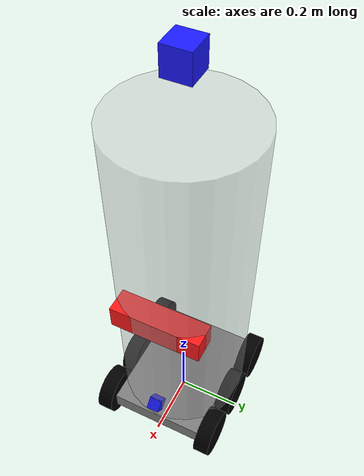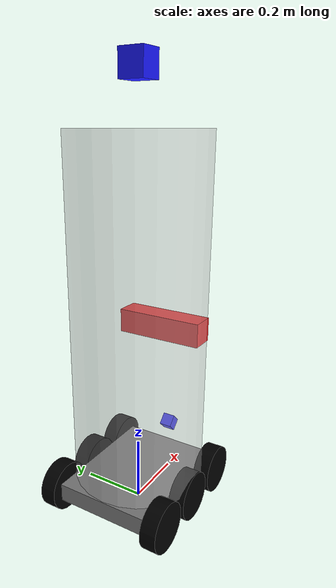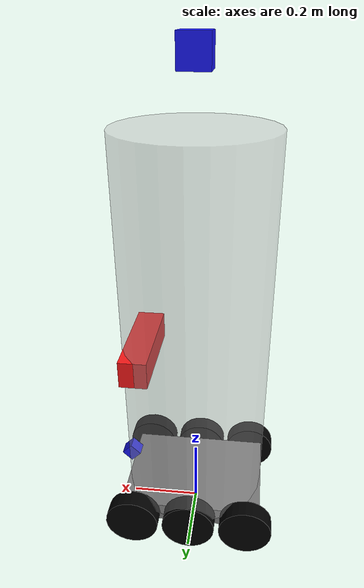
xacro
<?xml version="1.0"?>
<robot name="efim" xmlns:sensor="http://playerstage.sourceforge.net/gazebo/xmlschema/#sensor" xmlns:controller="http://playerstage.sourceforge.net/gazebo/xmlschema/#controller" xmlns:interface="http://playerstage.sourceforge.net/gazebo/xmlschema/#interface" xmlns:xacro="http://ros.org/wiki/xacro">

  <!-- BASE-FOOTPRINT -->
  <!-- base_footprint is a fictitious link(frame) that is on the ground right below base_link origin -->
  <link name="base_footprint">
    <inertial>
      <mass value="0.0001" />
      <origin xyz="0 0 0" />
      <inertia ixx="0.0001" ixy="0.0" ixz="0.0" iyy="0.0001" iyz="0.0" izz="0.0001" />
    </inertial>
    <visual>
      <origin xyz="0 0 0" rpy="0 0 0" />
      <geometry>
        <box size="0.001 0.001 0.001" />
      </geometry>
    </visual>
  </link>

  <joint name="base_footprint_joint" type="fixed">
    <origin xyz="0 0 0.0762" rpy="0 0 0" />
    <parent link="base_footprint" />
    <child link="base_link" />
  </joint>

  <link name="base_link">
    <visual>
      <geometry>
        <box size="0.41148 0.30988 0.05588" />
      </geometry>
      <material name="grey">
        <color rgba="0.5 0.5 0.5 1" />
      </material>
    </visual>
    <collision>
      <geometry>
        <box size="0.41148 0.30988 0.05588" />
      </geometry>
    </collision>
    <inertial>
      <mass value="20.0" />
      <inertia ixx="1.0" iyy="1.0" izz="1.0" ixy="0" ixz="0" iyz="0" />
    </inertial>
  </link>

  <gazebo reference="base_link">
    <material>Gazebo/Black</material>
  </gazebo>

  <link name="body_link">
    <visual>
      <geometry>
        <cylinder length="1.04775" radius="0.2032" />
      </geometry>
      <material name="clear">
        <color rgba="0.75 0.75 0.75 0.4" />
      </material>
    </visual>
    <inertial>
      <mass value="10.0" />
      <inertia ixx="1.0" iyy="1.0" izz="1.0" ixy="0" ixz="0" iyz="0" />
    </inertial>
  </link>

  <joint name="center_joint" type="fixed">
    <axis xyz="0 0 1" />
    <parent link="base_link" />
    <child link="body_link" />
    <origin rpy="0 0 0" xyz="0 0 0.551815" />
  </joint>

  <link name="camera_link">
    <visual>
      <origin rpy="0 0 0" />
      <geometry>
        <box size="0.0762 0.2794 0.0762" />
      </geometry>
      <material name="red">
        <color rgba="1 0.1 0.1 1" />
      </material>
    </visual>
    <inertial>
      <mass value="0.25" />
      <inertia ixx="1.0" iyy="1.0" izz="1.0" ixy="0" ixz="0" iyz="0" />
    </inertial>
  </link>

  <joint name="camera_joint" type="fixed">
    <axis xyz="0 0 0" />
    <parent link="base_link" />
    <child link="camera_link" />
    <origin rpy="0 0 0" xyz="0.15 0 0.48" />
  </joint>

  <joint name="camera_depth_joint" type="fixed">
    <origin xyz="0 0 0" rpy="0 0 0" />
    <parent link="camera_link" />
    <child link="camera_depth_frame" />
  </joint>
  <link name="camera_depth_frame" />

  <joint name="camera_depth_optical_joint" type="fixed">
    <origin xyz="0 0 0" rpy="0 0 0" />
    <parent link="camera_link" />
    <child link="camera_depth_optical_frame" />
  </joint>
  <link name="camera_depth_optical_frame" />

  <link name="laser">
    <visual>
      <geometry>
        <box size="0.0762 0.0762 0.0762" />
      </geometry>
      <material name="blue">
        <color rgba="0.1 0.1 1 1" />
      </material>
    </visual>
    <inertial>
      <mass value="0.25" />
      <inertia ixx="1.0" iyy="1.0" izz="1.0" ixy="0" ixz="0" iyz="0" />
    </inertial>
  </link>

  <joint name="laser_joint" type="fixed">
    <axis xyz="0 0 1" />
    <parent link="base_link" />
    <child link="laser" />
    <origin rpy="0 0 0" xyz="0.0 0 1.23" />
  </joint>

  <link name="wheel_right">
    <visual>
      <geometry>
        <cylinder length="0.0508" radius="0.0762" />
      </geometry>
      <material name="black" />
    </visual>
    <collision>
      <geometry>
        <cylinder length="0.0508" radius="0.0762" />
      </geometry>
    </collision>
    <inertial>
      <mass value="0.1" />
      <inertia ixx="1.0" iyy="1.0" izz="1.0" ixy="0" ixz="0" iyz="0" />
    </inertial>
  </link>

  <joint name="axis_right" type="continuous">
    <axis xyz="0 0 1" />
    <parent link="base_link" />
    <child link="wheel_right" />
    <origin rpy="-1.5708 0 0" xyz="0 -0.18034 0" />
  </joint>

  <link name="wheel_left">
    <visual>
      <geometry>
        <cylinder length="0.0508" radius="0.0762" />
      </geometry>
      <material name="black">
        <color rgba="0 0 0 1" />
      </material>
    </visual>
    <collision>
      <geometry>
        <cylinder length="0.0508" radius="0.0762" />
      </geometry>
    </collision>
    <inertial>
      <mass value="0.1" />
      <inertia ixx="1.0" iyy="1.0" izz="1.0" ixy="0" ixz="0" iyz="0" />
    </inertial>
  </link>

  <joint name="axis_left" type="continuous">
    <axis xyz="0 0 1" />
    <parent link="base_link" />
    <child link="wheel_left" />
    <origin rpy="-1.5708 0 0" xyz="0 0.18034 0" />
  </joint>

  <link name="wheel_front_left">
    <visual>
      <geometry>
        <cylinder length="0.0508" radius="0.0762" />
      </geometry>
      <material name="black">
        <color rgba="0 0 0 1" />
      </material>
    </visual>
    <collision>
      <geometry>
        <cylinder length="0.0508" radius="0.0762" />
      </geometry>
    </collision>
    <inertial>
      <mass value="0.1" />
      <inertia ixx="1.0" iyy="1.0" izz="1.0" ixy="0" ixz="0" iyz="0" />
    </inertial>
  </link>

  <joint name="axis_front_left" type="continuous">
    <axis xyz="0 0 1" />
    <parent link="base_link" />
    <child link="wheel_front_left" />
    <origin rpy="-1.5708 0 0" xyz="0.165862 0.18034 0" />
  </joint>

  <link name="wheel_front_right">
    <visual>
      <geometry>
        <cylinder length="0.0508" radius="0.0762" />
      </geometry>
      <material name="black" />
    </visual>
    <collision>
      <geometry>
        <cylinder length="0.0508" radius="0.0762" />
      </geometry>
    </collision>
    <inertial>
      <mass value="0.1" />
      <inertia ixx="1.0" iyy="1.0" izz="1.0" ixy="0" ixz="0" iyz="0" />
    </inertial>
  </link>

  <joint name="axis_front_right" type="continuous">
    <axis xyz="0 0 1" />
    <parent link="base_link" />
    <child link="wheel_front_right" />
    <origin rpy="-1.5708 0 0" xyz="0.165862 -0.18034 0" />
  </joint>

  <link name="wheel_rear_right">
    <visual>
      <geometry>
        <cylinder length="0.0508" radius="0.0762" />
      </geometry>
      <material name="black" />
    </visual>
    <collision>
      <geometry>
        <cylinder length="0.0508" radius="0.0762" />
      </geometry>
    </collision>
    <inertial>
      <mass value="0.1" />
      <inertia ixx="1.0" iyy="1.0" izz="1.0" ixy="0" ixz="0" iyz="0" />
    </inertial>
  </link>

  <joint name="axis_rear_right" type="continuous">
    <axis xyz="0 0 1" />
    <parent link="base_link" />
    <child link="wheel_rear_right" />
    <origin rpy="-1.5708 0 0" xyz="-0.165862 -0.18034 0" />
  </joint>

  <link name="wheel_rear_left">
    <visual>
      <geometry>
        <cylinder length="0.0508" radius="0.0762" />
      </geometry>
      <material name="black" />
    </visual>
    <collision>
      <geometry>
        <cylinder length="0.0508" radius="0.0762" />
      </geometry>
    </collision>
    <inertial>
      <mass value="0.1" />
      <inertia ixx="1.0" iyy="1.0" izz="1.0" ixy="0" ixz="0" iyz="0" />
    </inertial>
    <gazebo reference="wheel_rear_left">
      <material>Gazebo/Black</material>
    </gazebo>
  </link>

  <joint name="axis_rear_left" type="continuous">
    <axis xyz="0 0 1" />
    <parent link="base_link" />
    <child link="wheel_rear_left" />
    <origin rpy="-1.5708 0 0" xyz="-0.165862 0.18034 0" />
  </joint>

  <link name="front_sonar">
    <visual>
      <geometry>
        <box size="0.04 0.04 0.04" />
      </geometry>
      <material name="red">
        <color rgba="0.1 0.1 1 1" />
      </material>
    </visual>
    <inertial>
      <mass value="0.01" />
      <inertia ixx="1.0" iyy="1.0" izz="1.0" ixy="0" ixz="0" iyz="0" />
    </inertial>
  </link>

  <joint name="front_sonar_joint" type="fixed">
    <axis xyz="0 0 0" />
    <parent link="base_link" />
    <child link="front_sonar" />
    <origin rpy="0 0.785398 0" xyz="0.2 0.0 0.1" />
  </joint>

  <gazebo reference="front_sonar">
    <sensor type="ray" name="TeraRanger">
      <pose>0 0 0 0 0 0</pose>
      <visualize>true</visualize>
      <update_rate>50</update_rate>
      <ray>
        <scan>
          <horizontal>
            <samples>10</samples>
            <resolution>1</resolution>
            <min_angle>-0.14835</min_angle>
            <max_angle>0.14835</max_angle>
          </horizontal>
          <vertical>
            <samples>10</samples>
            <resolution>1</resolution>
            <min_angle>-0.14835</min_angle>
            <max_angle>0.14835</max_angle>
          </vertical>
        </scan>
        <range>
          <min>0.01</min>
          <max>2</max>
          <resolution>0.02</resolution>
        </range>
      </ray>
      <plugin filename="libgazebo_ros_range.so" name="gazebo_ros_range">
        <gaussianNoise>0.005</gaussianNoise>
        <alwaysOn>true</alwaysOn>
        <updateRate>50</updateRate>
        <topicName>sonar</topicName>
        <frameName>front_sonar</frameName>
        <radiation>ULTRASOUND</radiation>
        <fov>0.261799</fov>
      </plugin>
    </sensor>
  </gazebo>

  <gazebo>
    <plugin name="skid_steer_drive_controller" filename="libgazebo_ros_skid_steer_drive.so">
      <updateRate>100.0</updateRate>
      <robotNamespace></robotNamespace>
      <leftFrontJoint>axis_front_left</leftFrontJoint>
      <rightFrontJoint>axis_front_right</rightFrontJoint>
      <leftRearJoint>axis_rear_left</leftRearJoint>
      <rightRearJoint>axis_rear_right</rightRearJoint>
      <wheelSeparation>0.254</wheelSeparation>
      <wheelDiameter>0.1524</wheelDiameter>
      <robotBaseFrame>base_footprint</robotBaseFrame>
      <torque>10</torque>
      <commandTopic>cmd_vel</commandTopic>
      <broadcastTF>1</broadcastTF>
      <odometryFrame>odom</odometryFrame>
      <odometryTopic>odom_gazebo</odometryTopic>
    </plugin>
  </gazebo>

  <plugin name="joint_state_publisher" filename="libgazebo_ros_joint_state_publisher.so">
    <jointName>axis_front_left, axis_front_right, axis_rear_left, axis_rear_right</jointName>
    <updateRate>100</updateRate>
  </plugin>

  <gazebo reference="laser">
    <material>Gazebo/Blue</material>
    <sensor type="ray" name="head_hokuyo_sensor">
      <pose>0 0 0 0 0 0</pose>
      <visualize>true</visualize>
      <update_rate>40</update_rate>
      <ray>
        <scan>
          <horizontal>
            <samples>720</samples>
            <resolution>1</resolution>
            <min_angle>-1.570795</min_angle>
            <max_angle>1.570795</max_angle>
          </horizontal>
        </scan>
        <range>
          <min>0.10</min>
          <max>30.0</max>
          <resolution>0.01</resolution>
        </range>
        <noise>
          <type>gaussian</type>
          <mean>0.0</mean>
          <stddev>0.01</stddev>
        </noise>
      </ray>
      <plugin name="gazebo_ros_head_hokuyo_controller" filename="libgazebo_ros_laser.so">
        <topicName>/scan</topicName>
        <frameName>laser</frameName>
      </plugin>
    </sensor>
  </gazebo>

  <gazebo reference="camera_link">
    <material>Gazebo/Blue</material>
    <sensor type="depth" name="camera">
      <always_on>true</always_on>
      <update_rate>20.0</update_rate>
      <visualize>true</visualize>
      <camera>
        <horizontal_fov>1.046666667</horizontal_fov>
        <image>
          <width>640</width>
          <height>480</height>
          <format>B8G8R8</format>
        </image>
        <depth_camera></depth_camera>
        <clip>
          <near>0.05</near>
          <far>8.0</far>
        </clip>
      </camera>
      <plugin name="kinect_camera_controller" filename="libgazebo_ros_openni_kinect.so">
        <cameraName>camera</cameraName>
        <alwaysOn>true</alwaysOn>
        <updateRate>10.0</updateRate>
        <frameName>camera_link</frameName>
        <imageTopicName>rgb/image_rect_color</imageTopicName>
        <depthImageTopicName>depth_registered/image_raw</depthImageTopicName>
        <pointCloudTopicName>depth/points</pointCloudTopicName>
        <cameraInfoTopicName>rgb/camera_info</cameraInfoTopicName>
        <depthImageCameraInfoTopicName>depth/camera_info</depthImageCameraInfoTopicName>
        <baseline>0.1</baseline>
        <distortion_k1>0.0</distortion_k1>
        <distortion_k2>0.0</distortion_k2>
        <distortion_k3>0.0</distortion_k3>
        <distortion_t1>0.0</distortion_t1>
        <distortion_t2>0.0</distortion_t2>
        <pointCloudCutoff>0.4</pointCloudCutoff>
      </plugin>
    </sensor>
  </gazebo>

</robot>
